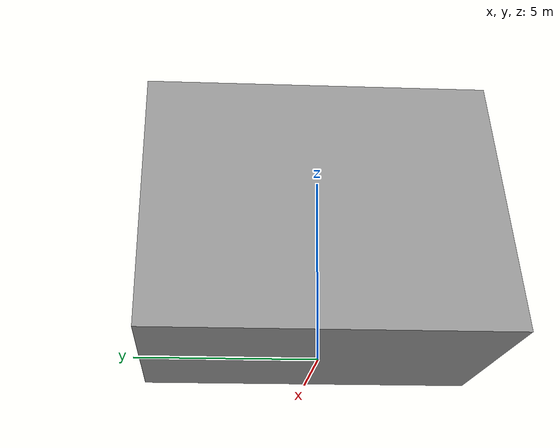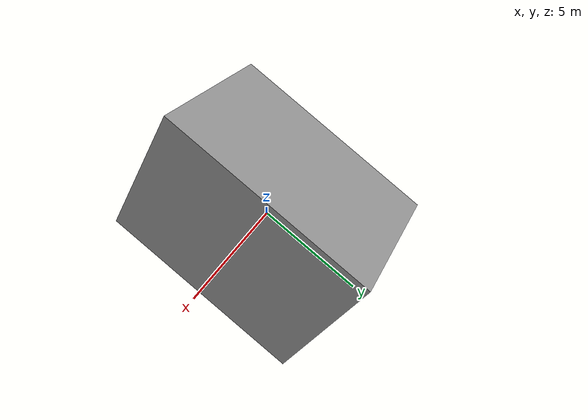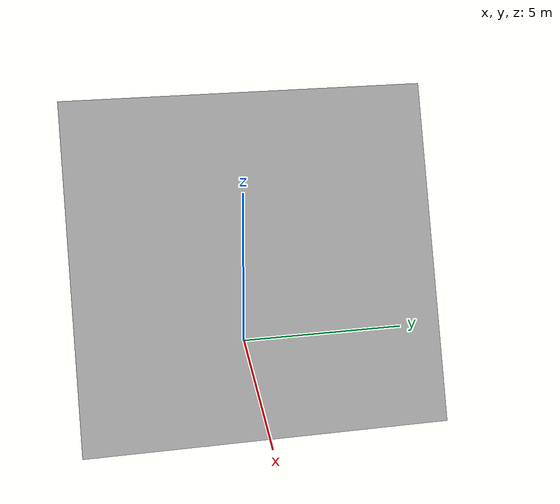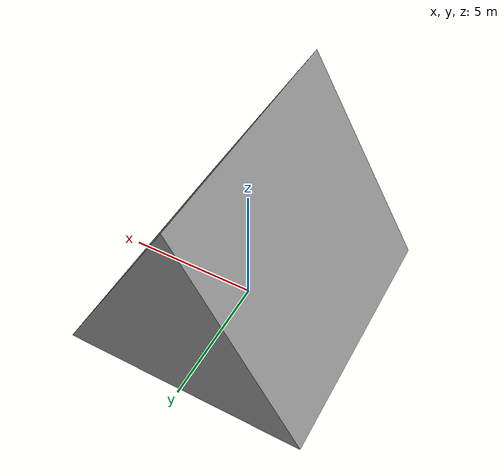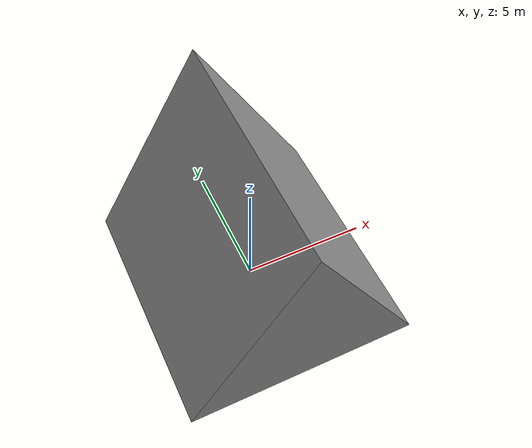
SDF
<?xml version="1.0"?>
<sdf version="1.5">
	<model name="triangular_prism">
		<static>true</static>
		<link name="link">
			<collision name="collision">
				<geometry>
					<mesh>
						<uri>model://triangular_prism/meshes/20255_Triangular_Prism_V1.dae</uri>
						<scale>1.000 1.000 1.000</scale>
					</mesh>
				</geometry>
				<surface>
					<friction>
						<ode>
							<mu>0.6</mu>
							<mu2>0.6</mu2>
						</ode>
					</friction>
				</surface>
			</collision>
			<visual name="visual">
				<pose>0 0 0 0 0 0</pose>
				<geometry>
					<mesh>
						<uri>model://triangular_prism/meshes/20255_Triangular_Prism_V1.dae</uri>
						<scale>1.000 1.000 1.000</scale>
					</mesh>
				</geometry>
				<material>
				<script>
            <uri>file://media/materials/scripts/gazebo.material</uri>
            <name>Gazebo/Grey</name>
          </script>
        </material>
      </visual>
		</link>
	</model>
</sdf>
